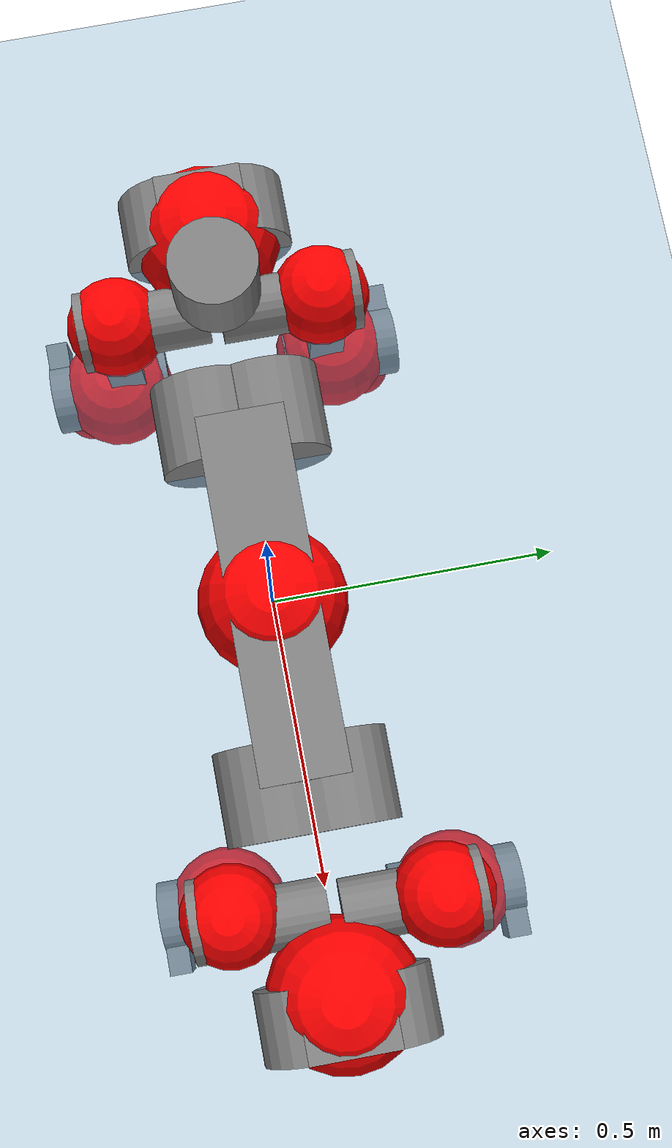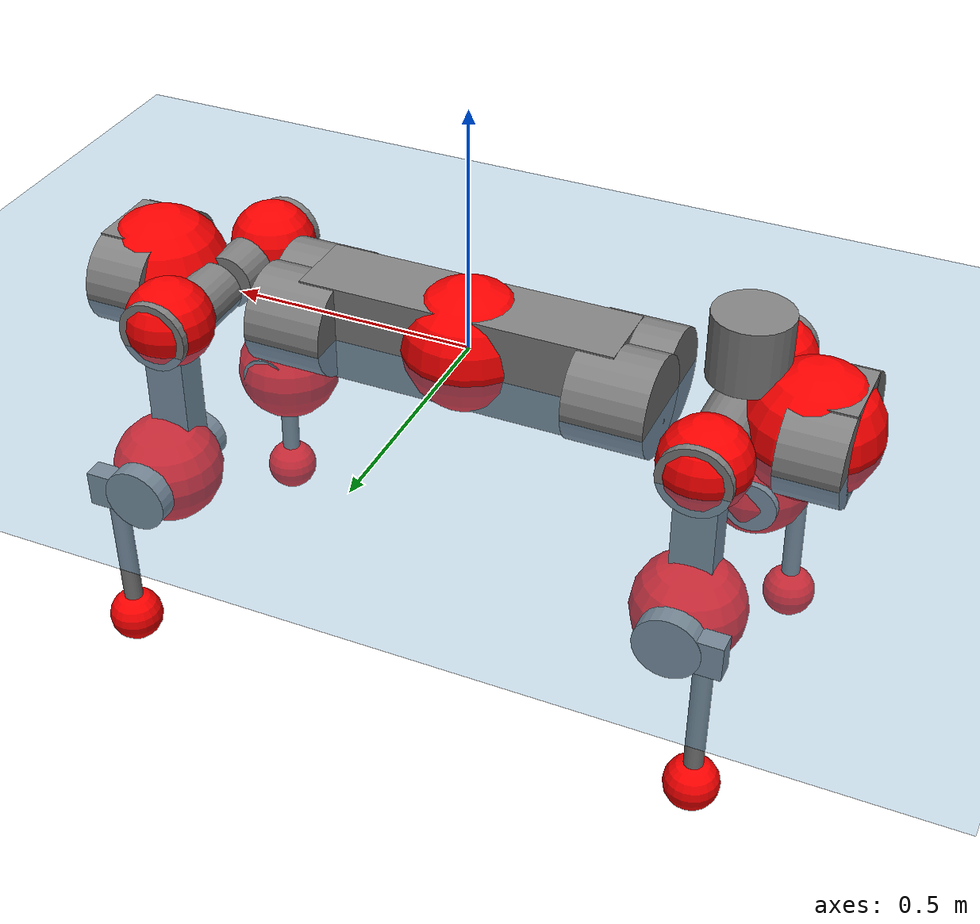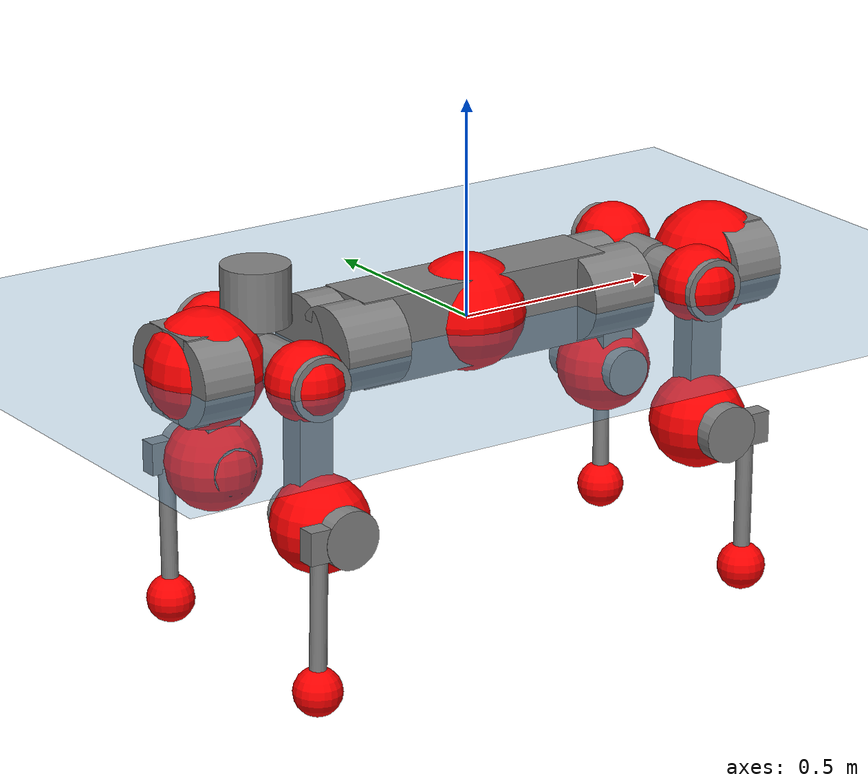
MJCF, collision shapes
<mujoco model="anymal_c">
  <compiler angle="radian" assetdir="assets" balanceinertia="true" inertiafromgeom="false"/>

  <option timestep="0.005" density="1.2" viscosity="2e-05"/>

  <size nkey="1"/>

  <visual>
    <quality shadowsize="8192"/>
    <map shadowclip="0.5"/>
  </visual>

  <default>
    <default class="/">
      <material specular="0" shininess="0.25"/>
      <geom contype="0" conaffinity="0" group="1" solref="-1000 -80"/>
      <site size="0.01 0.005 0.005" group="5"/>
      <general forcelimited="true" forcerange="-80 80" biastype="affine" gainprm="80" biasprm="0 -80 -2"/>
      <default class="anymal_c">
        <joint armature="0.01" damping="0.01" frictionloss="0.1"/>
        <default class="visual">
          <geom type="mesh" group="2"/>
          <default class="visual_zflip"/>
        </default>
        <default class="collision">
          <geom type="cylinder" group="3"/>
          <default class="foot">
            <geom size="0.03 0 0" type="sphere" condim="6" priority="1" friction="0.8 0.02 0.01" solimp="0.015 1 0.03"/>
          </default>
        </default>
      </default>
      <default class="reward_collision_sphere">
        <geom group="5" rgba="1 0 0 1"/>
      </default>
    </default>
  </default>

  <asset>
    <texture type="skybox" colorspace="auto" name="//unnamed_texture_0" builtin="gradient" rgb1="0.95 0.95 0.95" rgb2="0.95 0.95 0.95" width="100" height="600"/>
    <texture type="2d" colorspace="auto" name="texplane" builtin="checker" rgb1="0.345 0.575 0.748" rgb2="0.345 0.575 0.748" markrgb="1 1 1" width="512" height="512"/>
    <texture type="2d" colorspace="linear" name="base" file="base.png"/>
    <texture type="2d" colorspace="linear" name="top_shell" file="top_shell.png"/>
    <texture type="2d" colorspace="linear" name="bottom_shell" file="bottom_shell.png"/>
    <texture type="2d" colorspace="linear" name="remote" file="remote.png"/>
    <texture type="2d" colorspace="linear" name="hatch" file="hatch.png"/>
    <texture type="2d" colorspace="linear" name="handle" file="handle.png"/>
    <texture type="2d" colorspace="linear" name="face" file="face.png"/>
    <texture type="2d" colorspace="linear" name="battery" file="battery.png"/>
    <texture type="2d" colorspace="linear" name="lidar_cage" file="lidar_cage.png"/>
    <texture type="2d" colorspace="linear" name="depth_camera" file="depth_camera.png"/>
    <texture type="2d" colorspace="linear" name="wide_angle_camera" file="wide_angle_camera.png"/>
    <texture type="2d" colorspace="linear" name="lidar" file="lidar.png"/>
    <texture type="2d" colorspace="linear" name="drive" file="drive.png"/>
    <texture type="2d" colorspace="linear" name="hip_l" file="hip_l.png"/>
    <texture type="2d" colorspace="linear" name="shank_l" file="shank_l.png"/>
    <texture type="2d" colorspace="linear" name="foot" file="foot.png"/>
    <texture type="2d" colorspace="linear" name="thigh" file="thigh.png"/>
    <texture type="2d" colorspace="linear" name="shank_r" file="shank_r.png"/>
    <texture type="2d" colorspace="linear" name="hip_r" file="hip_r.png"/>
    <material name="MatPlane" class="/" texture="texplane" texuniform="true" texrepeat="2 2" specular="0.9" shininess="0.5"/>
    <material name="black_plastic" class="/" rgba="0.007 0.007 0.007 1"/>
    <material name="green" class="/" rgba="0.052 0.178 0.033 1"/>
    <material name="red" class="/" rgba="0.178 0.006 0.005 1"/>
    <material name="yellow" class="/" rgba="0.178 0.119 0.006 1"/>
    <material name="lwl" class="/" rgba="0.8 0.8 0.8 1"/>
    <material name="base" class="/" texture="base"/>
    <material name="top_shell" class="/" texture="top_shell"/>
    <material name="bottom_shell" class="/" texture="bottom_shell"/>
    <material name="hip_l" class="/" texture="hip_l"/>
    <material name="thigh" class="/" texture="thigh"/>
    <material name="shank_l" class="/" texture="shank_l"/>
    <material name="foot" class="/" texture="foot"/>
    <material name="hip_r" class="/" texture="hip_r"/>
    <material name="shank" class="/" texture="shank_r"/>
    <material name="hatch" class="/" texture="hatch"/>
    <material name="remote" class="/" texture="remote"/>
    <material name="handle" class="/" texture="handle"/>
    <material name="face" class="/" texture="face"/>
    <material name="depth_camera" class="/" texture="depth_camera"/>
    <material name="wide_angle_camera" class="/" texture="wide_angle_camera"/>
    <material name="battery" class="/" texture="battery"/>
    <material name="lidar_cage" class="/" texture="lidar_cage"/>
    <material name="lidar" class="/" texture="lidar"/>
    <material name="drive" class="/" texture="drive"/>
    <mesh name="base_0" class="/" file="base_0.obj"/>
    <mesh name="base_1" class="/" file="base_1.obj"/>
    <mesh name="base_2" class="/" file="base_2.obj"/>
    <mesh name="base_3" class="/" file="base_3.obj"/>
    <mesh name="base_4" class="/" file="base_4.obj"/>
    <mesh name="base_5" class="/" file="base_5.obj"/>
    <mesh name="top_shell" class="/" file="top_shell.obj"/>
    <mesh name="bottom_shell" class="/" file="bottom_shell.obj"/>
    <mesh name="remote" class="/" file="remote.obj"/>
    <mesh name="handle" class="/" file="handle.obj"/>
    <mesh name="face" class="/" file="face.obj"/>
    <mesh name="wide_angle_camera" class="/" file="wide_angle_camera.obj"/>
    <mesh name="depth_camera" class="/" file="depth_camera.obj"/>
    <mesh name="battery" class="/" file="battery.obj"/>
    <mesh name="lidar_cage" class="/" file="lidar_cage.obj"/>
    <mesh name="lidar" class="/" file="lidar.obj"/>
    <mesh name="drive" class="/" file="drive.obj"/>
    <mesh name="hip_l" class="/" file="hip_l.obj"/>
    <mesh name="thigh" class="/" file="thigh.obj"/>
    <mesh name="shank_l" class="/" file="shank_l.obj"/>
    <mesh name="foot" class="/" file="foot.obj"/>
    <mesh name="hip_r" class="/" file="hip_r.obj"/>
    <mesh name="hatch" class="/" file="hatch.obj"/>
    <mesh name="shank_r" class="/" file="shank_r.obj"/>
  </asset>

  <worldbody>
    <geom name="floor" class="/" size="100 100 0.125" type="plane" group="0" material="MatPlane"/>
    <light name="toplight_shadow" class="/" pos="0 0 5" dir="0.0990148 0.0990148 -0.990148" type="directional" ambient="0.04 0.04 0.04" diffuse="0.55 0.55 0.55" specular="0.12 0.12 0.12"/>
    <light name="toplight_fill" class="/" pos="0 0 5" dir="0.0990148 0.0990148 -0.990148" type="directional" castshadow="false" ambient="0.04 0.04 0.04" diffuse="0.3 0.3 0.3" specular="0.08 0.08 0.08"/>
    <body name="trunk" childclass="anymal_c" pos="-0.000245169 0.000598042 0.0119663" quat="0.999999 0.000589413 -2.55205e-05 -0.000823267">
      <inertial pos="0.00085652 -0.0158154 0.0415795" quat="0.499679 0.501152 0.499654 0.499513" mass="27.4742" diaginertia="4.62285 0.146784 0.376881"/>
      <joint name="//unnamed_joint_0" type="free" armature="0" damping="0" frictionloss="0"/>
      <geom name="//unnamed_geom_1" class="visual" material="green" mesh="base_0"/>
      <geom name="//unnamed_geom_2" class="visual" material="yellow" mesh="base_1"/>
      <geom name="//unnamed_geom_3" class="visual" material="red" mesh="base_2"/>
      <geom name="//unnamed_geom_4" class="visual" material="black_plastic" mesh="base_3"/>
      <geom name="//unnamed_geom_5" class="visual" material="lwl" mesh="base_4"/>
      <geom name="//unnamed_geom_6" class="visual" material="base" mesh="base_5"/>
      <geom name="trunk_1" class="collision" size="0.322646 0.0778802 0.100132" type="box"/>
      <geom name="trunk_2" class="collision" size="0.100132 0.0806616" pos="0.32897 0.051711 0" quat="0.707107 0 0.707107 0"/>
      <geom name="trunk_3" class="collision" size="0.100132 0.0806616" pos="-0.32897 0.051711 0" quat="0.707107 0 0.707107 0"/>
      <geom name="trunk_4" class="collision" size="0.100132 0.0806616" pos="0.32897 -0.051711 0" quat="0.707107 0 0.707107 0"/>
      <geom name="trunk_5" class="collision" size="0.100132 0.0806616" pos="-0.32897 -0.051711 0" quat="0.707107 0 0.707107 0"/>
      <geom name="//unnamed_geom_12" class="visual" material="top_shell" mesh="top_shell"/>
      <geom name="//unnamed_geom_13" class="visual" material="bottom_shell" mesh="bottom_shell"/>
      <geom name="//unnamed_geom_14" class="visual" material="remote" mesh="remote"/>
      <geom name="//unnamed_geom_15" class="visual" material="handle" mesh="handle"/>
      <geom name="//unnamed_geom_16" class="visual" pos="0.626934 0 0" quat="1 0 0 0" material="face" mesh="face"/>
      <geom name="trunk_6" class="collision" size="0.0611916 0.0778802 0.100132" pos="0.710122 0 0" type="box"/>
      <geom name="//unnamed_geom_18" class="collision" size="0.100132 0.0611916" pos="0.710122 0.051711 0" quat="0.707107 0 0.707107 0"/>
      <geom name="//unnamed_geom_19" class="collision" size="0.100132 0.0611916" pos="0.710122 -0.051711 0" quat="0.707107 0 0.707107 0"/>
      <geom name="//unnamed_geom_20" class="visual" pos="0.698231 0 -0.0284877" quat="0.965926 0 0.258819 0" material="depth_camera" mesh="depth_camera"/>
      <geom name="//unnamed_geom_21" class="visual" pos="0.775916 0 0.0162647" material="wide_angle_camera" mesh="wide_angle_camera"/>
      <geom name="//unnamed_geom_22" class="visual_zflip" pos="-0.626934 0 0" quat="0 0 0 1" material="face" mesh="face"/>
      <geom name="trunk_7" class="collision" size="0.0611916 0.0778802 0.100132" pos="-0.710122 0 0" quat="0 0 0 1" type="box"/>
      <geom name="//unnamed_geom_24" class="collision" size="0.100132 0.0611916" pos="-0.710122 -0.051711 0" quat="0 -0.707107 0 0.707107"/>
      <geom name="//unnamed_geom_25" class="collision" size="0.100132 0.0611916" pos="-0.710122 0.051711 0" quat="0 -0.707107 0 0.707107"/>
      <geom name="//unnamed_geom_26" class="visual" pos="-0.698231 0 -0.0284877" quat="0 -0.258819 0 0.965926" material="depth_camera" mesh="depth_camera"/>
      <geom name="//unnamed_geom_27" class="visual_zflip" pos="-0.775916 0 0.0162647" quat="0 0 0 1" material="wide_angle_camera" mesh="wide_angle_camera"/>
      <geom name="//unnamed_geom_28" class="visual" material="battery" mesh="battery"/>
      <geom name="//unnamed_geom_29" class="visual" pos="0 0.0463119 0.0348002" quat="0.683013 -0.183013 0.183013 0.683013" material="depth_camera" mesh="depth_camera"/>
      <geom name="//unnamed_geom_30" class="visual" pos="0 -0.0463119 0.0348002" quat="0.683013 0.183013 0.183013 -0.683013" material="depth_camera" mesh="depth_camera"/>
      <geom name="//unnamed_geom_31" class="visual" pos="-0.550553 0 0.0798568" quat="1 0 0 0" material="lidar_cage" mesh="lidar_cage"/>
      <geom name="trunk_8" class="collision" size="0.0778802 0.0667544" pos="-0.550553 0 0.145046"/>
      <geom name="//unnamed_geom_33" class="visual" pos="-0.550553 -0.000303997 0.154498" quat="0.707107 0 0 -0.707107" material="lidar" mesh="lidar"/>
      <geom name="//unnamed_geom_34" class="visual" pos="0.453601 0.0769513 -5.99887e-09" quat="0.258819 0.965926 0 0" material="drive" mesh="drive"/>
      <geom name="//unnamed_geom_35" class="visual" pos="0.453601 -0.0769513 5.99887e-09" quat="0.258819 -0.965926 0 0" material="drive" mesh="drive"/>
      <geom name="//unnamed_geom_36" class="visual" pos="-0.453601 0.0769513 5.99887e-09" quat="0 0 0.965926 -0.258819" material="drive" mesh="drive"/>
      <geom name="//unnamed_geom_37" class="visual" pos="-0.453601 -0.0769513 -5.99887e-09" quat="0 0 -0.965926 -0.258819" material="drive" mesh="drive"/>
      <geom name="//unnamed_geom_38" class="visual" pos="0.175451 0 0.0793135" quat="1 0 0 0" material="hatch" mesh="hatch"/>
      <geom name="//unnamed_geom_39" class="reward_collision_sphere" size="0.133509"/>
      <geom name="//unnamed_geom_40" class="reward_collision_sphere" size="0.133509" pos="0.680628 0 0"/>
      <geom name="//unnamed_geom_41" class="reward_collision_sphere" size="0.133509" pos="-0.680628 0 0"/>
      <site name="imu" pos="0.339349 0.0558626 0.011442" size="0.0111257"/>
      <camera name="track" pos="0 -1.47746 0" quat="0.707107 0.707107 0 0" mode="trackcom"/>
      <camera name="ego_camera" pos="0.680628 0 -0.0434595" quat="-0.5 -0.5 0.5 0.5"/>
      <body name="LF_HIP" pos="0.455972 0.0876919 -0.00325822" quat="0.261073 0.965317 -0.000691398 -0.00192472">
        <inertial pos="0.0998852 -0.00917691 0.000625114" quat="-0.141841 0.718888 -0.139945 0.665955" mass="4.47063" diaginertia="0.0506493 0.0013144 0.00470826"/>
        <joint name="LF_HAA" pos="0 0 0" axis="0.999995 0.00037214 -0.00324027" range="-0.549472 0.487106" armature="0.00469573" damping="0" frictionloss="0.187396"/>
        <geom name="//unnamed_geom_42" class="visual" pos="0 -0.000352886 5.79613e-05" quat="0.258819 -0.965926 0 0" material="hip_l" mesh="hip_l"/>
        <geom name="//unnamed_geom_43" class="visual" pos="0.0905992 -0.0997157 -0.0601432" quat="0.183013 -0.683013 0.683013 0.183013" material="drive" mesh="drive"/>
        <geom name="//unnamed_geom_44" class="collision" size="0.0556287 0.0778802" pos="0.0905992 -0.00883504 -0.00750219" quat="-0.353553 -0.612372 0.612372 -0.353553"/>
        <body name="LF_THIGH" pos="0.0908552 -0.0496501 -0.0540808" quat="0.183095 -0.682916 0.683122 0.182884">
          <inertial pos="0.0488549 0.000945525 -0.257143" quat="0.992826 -0.0143563 -0.0868815 0.0808817" mass="4.62448" diaginertia="0.228288 0.0065201 0.00903978"/>
          <joint name="LF_HFE" pos="0 0 0" axis="0.999033 0.023995 -0.0368432" stiffness="0.0325799" range="-2.91625 2.97015" armature="0.0071347" damping="0.0155416" frictionloss="0.0917144"/>
          <geom name="//unnamed_geom_45" class="visual" pos="0.0153952 2.42592e-05 0" quat="0.707107 0 0 -0.707107" material="thigh" mesh="thigh"/>
          <geom name="//unnamed_geom_46" class="collision" size="0.0723173 0.044503" pos="0.0605003 0 0" quat="0.5 0.5 -0.5 -0.5"/>
          <geom name="//unnamed_geom_47" class="collision" size="0.0417215 0.0333772 0.157222" pos="0.0453752 0 -0.153536" quat="0.707107 0 0 -0.707107" type="box"/>
          <geom name="//unnamed_geom_48" class="visual" pos="0.151704 0 -0.309649" quat="1 0 0 0" material="drive" mesh="drive"/>
          <geom name="//unnamed_geom_49" class="collision" size="0.0556287 0.0778802" pos="0.045829 0 -0.309649" quat="0.707107 0 0.707107 0"/>
          <geom name="//unnamed_geom_50" class="reward_collision_sphere" size="0.0890059" pos="0.0378127 0 0"/>
          <body name="LF_SHANK" pos="0.160258 -0.0117827 -0.322325" quat="0.999971 0.00357607 0.00637911 -0.00219379">
            <inertial pos="0.0112 -0.0454977 -0.0873198" quat="0.992863 -0.116385 -6.61524e-05 -0.0260224" mass="1.02548" diaginertia="0.0781964 0.00208498 0.00188591"/>
            <joint name="LF_KFE" pos="0 0 0" axis="0.999526 -0.0305697 0.00364072" range="-3.22025 3.23804" armature="0.0163487" damping="0" frictionloss="0.177995"/>
            <geom name="//unnamed_geom_51" class="visual" pos="0.00502002 0.026767 0" quat="0.707107 0 0 -0.707107" material="shank_l" mesh="shank_l"/>
            <geom name="LF_kfe_act" class="collision" size="0.0667544 0.0222515" pos="0.0302501 0 0" quat="0.5 0.5 -0.5 -0.5"/>
            <geom name="//unnamed_geom_53" class="collision" size="0.0639719 0.0375494 0.0211389" pos="0.0302501 -0.0424761 0" quat="0.5 0.5 -0.5 -0.5" type="box"/>
            <geom name="//unnamed_geom_54" class="visual" pos="0.019737 -0.0563452 -0.3672" quat="0.382683 0 0 -0.92388" material="foot" mesh="foot"/>
            <geom name="LF_calf" class="collision" size="0.01947 0.157153" pos="0.0197382 -0.0649711 -0.1836" quat="0.707107 0 0 -0.707107"/>
            <geom name="LF_foot" class="foot" size="0.0167331" pos="0.0197382 -0.0649711 -0.342754" quat="0.707107 0 0 -0.707107"/>
            <geom name="//unnamed_geom_57" class="reward_collision_sphere" size="0.111257" pos="-0.0756253 0 0"/>
            <geom name="//unnamed_geom_58" class="reward_collision_sphere" size="0.0556287" pos="0.0197382 -0.0649711 -0.342754"/>
            <site name="LF_foot" class="foot" pos="0.0197382 -0.0649711 -0.342754" quat="0.707107 0 0 -0.707107" size="0.0111257"/>
          </body>
        </body>
      </body>
      <body name="RF_HIP" pos="0.44638 -0.0664273 -0.00147923" quat="0.263455 -0.96466 0.00318921 0.00344387">
        <inertial pos="0.0866484 0.00697203 -0.00429809" quat="0.134523 0.680762 0.124606 0.709182" mass="4.14881" diaginertia="0.0569452 0.00143066 0.00480386"/>
        <joint name="RF_HAA" pos="0 0 0" axis="0.999979 -0.00595923 0.00270911" range="-0.74725 1.02337" armature="0.0121055" damping="0" frictionloss="0.172632"/>
        <geom name="//unnamed_geom_59" class="visual" pos="0 0.000352884 5.79612e-05" quat="0.258819 0.965926 0 0" material="hip_r" mesh="hip_r"/>
        <geom name="//unnamed_geom_60" class="visual" pos="0.0905991 0.0997157 -0.0601432" quat="0.183013 0.683013 0.683013 -0.183013" material="drive" mesh="drive"/>
        <geom name="//unnamed_geom_61" class="collision" size="0.0556287 0.0778802" pos="0.0905992 0.00883504 -0.00750219" quat="-0.353553 0.612372 0.612372 0.353553"/>
        <body name="RF_THIGH" pos="0.0739982 0.0435251 -0.0438136" quat="0.18029 0.68308 0.683164 -0.18489">
          <inertial pos="0.0448636 0.00422312 -0.266382" quat="0.992666 -0.00234834 -0.0822538 0.0885563" mass="3.72167" diaginertia="0.224743 0.0057359 0.0046713"/>
          <joint name="RF_HFE" pos="0 0 0" axis="0.996985 0.0768012 -0.0110867" stiffness="0.0155217" range="-3.48253 3.4443" armature="0.0101945" damping="0.0670188" frictionloss="0.143244"/>
          <geom name="//unnamed_geom_62" class="visual" pos="0.0153952 2.42592e-05 0" quat="0.707107 0 0 -0.707107" material="thigh" mesh="thigh"/>
          <geom name="//unnamed_geom_63" class="collision" size="0.0723173 0.044503" pos="0.0605003 0 0" quat="0.5 0.5 0.5 0.5"/>
          <geom name="//unnamed_geom_64" class="collision" size="0.0417215 0.0333772 0.157222" pos="0.0453752 0 -0.153536" quat="0.707107 0 0 0.707107" type="box"/>
          <geom name="//unnamed_geom_65" class="visual" pos="0.151704 0 -0.309649" quat="1 0 0 0" material="drive" mesh="drive"/>
          <geom name="//unnamed_geom_66" class="collision" size="0.0556287 0.0778802" pos="0.045829 0 -0.309649" quat="0.707107 0 0.707107 0"/>
          <geom name="//unnamed_geom_67" class="reward_collision_sphere" size="0.0890059" pos="0.0378127 0 0"/>
          <body name="RF_SHANK" pos="0.136137 -0.00536186 -0.319192" quat="0.999997 0.000592309 0.00166957 0.00182075">
            <inertial pos="0.0162029 0.0509777 -0.10406" quat="0.990898 0.133907 0.0136171 0.00192513" mass="0.980914" diaginertia="0.0694807 0.00206526 0.00172087"/>
            <joint name="RF_KFE" pos="0 0 0" axis="0.996273 -0.0330398 0.0796834" stiffness="0.0373609" range="-3.26915 3.4131" armature="0.0116797" damping="0" frictionloss="0.206676"/>
            <geom name="//unnamed_geom_68" class="visual" pos="0.00502 -0.026767 0" quat="0.707107 0 0 0.707107" material="shank" mesh="shank_r"/>
            <geom name="RF_kfe_act" class="collision" size="0.0667544 0.0222515" pos="0.0302501 0 0" quat="0.5 0.5 0.5 0.5"/>
            <geom name="//unnamed_geom_70" class="collision" size="0.0639719 0.0375494 0.0211389" pos="0.0302501 0.0424761 0" quat="0.5 0.5 0.5 0.5" type="box"/>
            <geom name="//unnamed_geom_71" class="visual" pos="0.0197394 0.0563452 -0.3672" quat="0.382683 0 0 0.92388" material="foot" mesh="foot"/>
            <geom name="RF_calf" class="collision" size="0.01947 0.157153" pos="0.0197382 0.0649711 -0.1836" quat="0.707107 0 0 0.707107"/>
            <geom name="RF_foot" class="foot" size="0.0265156" pos="0.0197382 0.0649711 -0.342754" quat="0.707107 0 0 0.707107"/>
            <geom name="//unnamed_geom_74" class="reward_collision_sphere" size="0.111257" pos="-0.0756253 0 0"/>
            <geom name="//unnamed_geom_75" class="reward_collision_sphere" size="0.0556287" pos="0.0197382 0.0649711 -0.342754"/>
            <site name="RF_foot" class="foot" pos="0.0197382 0.0649711 -0.342754" quat="0.707107 0 0 0.707107" size="0.0111257"/>
          </body>
        </body>
      </body>
      <body name="LH_HIP" pos="-0.448013 0.0646295 -0.00319629" quat="0.000311184 -0.000314754 0.965442 -0.260616">
        <inertial pos="0.0951447 0.0251678 -0.0137819" quat="0.183428 0.682321 0.0535816 0.705635" mass="4.69092" diaginertia="0.0423754 0.00093569 0.00555168"/>
        <joint name="LH_HAA" pos="0 0 0" axis="0.998185 -0.0323382 -0.0508055" stiffness="0.0626847" range="-0.604684 0.905094" armature="0.0111123" damping="0.0659123" frictionloss="0.0582092"/>
        <geom name="//unnamed_geom_76" class="visual" pos="0 0.000352884 5.79612e-05" quat="-0.258819 -0.965926 0 0" material="hip_r" mesh="hip_r"/>
        <geom name="//unnamed_geom_77" class="visual" pos="0.0905991 0.0997157 -0.0601432" quat="0.183013 0.683013 0.683013 -0.183013" material="drive" mesh="drive"/>
        <geom name="//unnamed_geom_78" class="collision" size="0.0556287 0.0778802" pos="0.0905992 0.00883504 -0.00750219" quat="-0.353553 0.612372 0.612372 0.353553"/>
        <body name="LH_THIGH" pos="0.0904021 0.067681 -0.0474021" quat="0.181867 0.686128 0.679791 -0.184492">
          <inertial pos="0.0539293 0.0118488 -0.266567" quat="0.99044 -0.0144499 -0.0619116 0.122423" mass="3.98389" diaginertia="0.205253 0.00597563 0.00452641"/>
          <joint name="LH_HFE" pos="0 0 0" axis="0.999998 -0.000994119 0.00184974" range="-3.15119 3.1286" armature="0.0118872" damping="0.0427593" frictionloss="0.113115"/>
          <geom name="//unnamed_geom_79" class="visual" pos="0.0153952 2.42592e-05 0" quat="0.707107 0 0 -0.707107" material="thigh" mesh="thigh"/>
          <geom name="//unnamed_geom_80" class="collision" size="0.0723173 0.044503" pos="0.0605003 0 0" quat="0.5 0.5 -0.5 -0.5"/>
          <geom name="//unnamed_geom_81" class="collision" size="0.0417215 0.0333772 0.157222" pos="0.0453752 0 -0.153536" quat="0.707107 0 0 -0.707107" type="box"/>
          <geom name="//unnamed_geom_82" class="visual" pos="0.151704 0 -0.309649" quat="1 0 0 0" material="drive" mesh="drive"/>
          <geom name="//unnamed_geom_83" class="collision" size="0.0556287 0.0778802" pos="0.045829 0 -0.309649" quat="0.707107 0 0.707107 0"/>
          <geom name="//unnamed_geom_84" class="reward_collision_sphere" size="0.0890059" pos="0.0378127 0 0"/>
          <body name="LH_SHANK" pos="0.139144 -0.00116799 -0.312811" quat="0.999977 -0.00606821 0.00212932 -0.00209248">
            <inertial pos="-0.00457772 0.0525119 -0.0760856" quat="0.993116 0.114539 -0.000776636 0.0245239" mass="0.744639" diaginertia="0.0679983 0.00128406 0.00102627"/>
            <joint name="LH_KFE" pos="0 0 0" axis="0.998549 -0.0505003 -0.018713" range="-3.14632 3.49619" armature="0.012008" damping="0" frictionloss="0.0602263"/>
            <geom name="//unnamed_geom_85" class="visual" pos="0.00502 -0.026767 0" quat="-0.707107 0 0 -0.707107" material="shank" mesh="shank_r"/>
            <geom name="LH_kfe_act" class="collision" size="0.0667544 0.0222515" pos="0.0302501 0 0" quat="0.5 0.5 -0.5 -0.5"/>
            <geom name="//unnamed_geom_87" class="collision" size="0.0639719 0.0375494 0.0211389" pos="0.0302501 0.0424761 0" quat="0.5 0.5 -0.5 -0.5" type="box"/>
            <geom name="//unnamed_geom_88" class="visual" pos="0.0197394 0.0563452 -0.3672" quat="-0.382683 0 0 -0.92388" material="foot" mesh="foot"/>
            <geom name="LH_calf" class="collision" size="0.01947 0.157153" pos="0.0197382 0.0649711 -0.1836" quat="0.707107 0 0 -0.707107"/>
            <geom name="LH_foot" class="foot" size="0.0530221" pos="0.0197382 0.0649711 -0.342754" quat="0.707107 0 0 -0.707107"/>
            <geom name="//unnamed_geom_91" class="reward_collision_sphere" size="0.111257" pos="-0.0756253 0 0"/>
            <geom name="//unnamed_geom_92" class="reward_collision_sphere" size="0.0556287" pos="0.0197382 0.0649711 -0.342754"/>
            <site name="LH_foot" class="foot" pos="0.0197382 0.0649711 -0.342754" quat="0.707107 0 0 -0.707107" size="0.0111257"/>
          </body>
        </body>
      </body>
      <body name="RH_HIP" pos="-0.452862 -0.0898307 -0.0011134" quat="0.00585655 0.00345589 -0.966451 -0.256761">
        <inertial pos="0.0801546 -0.0205595 -0.000345455" quat="-0.192045 0.71695 -0.0811022 0.665225" mass="4.71318" diaginertia="0.0457168 0.0013772 0.00566113"/>
        <joint name="RH_HAA" pos="0 0 0" axis="0.999327 0.0154586 0.033264" stiffness="0.0327736" range="-0.439982 0.372757" armature="0.0198128" damping="0.012739" frictionloss="0.0508189"/>
        <geom name="//unnamed_geom_93" class="visual" pos="0 -0.000352886 5.79613e-05" quat="-0.258819 0.965926 0 0" material="hip_l" mesh="hip_l"/>
        <geom name="//unnamed_geom_94" class="visual" pos="0.0905992 -0.0997157 -0.0601432" quat="-0.183013 0.683013 -0.683013 -0.183013" material="drive" mesh="drive"/>
        <geom name="//unnamed_geom_95" class="collision" size="0.0556287 0.0778802" pos="0.0905992 -0.00883504 -0.00750219" quat="0.353553 0.612372 -0.612372 0.353553"/>
        <body name="RH_THIGH" pos="0.09477 -0.0552289 -0.0296773" quat="-0.18278 0.683457 -0.682185 -0.184668">
          <inertial pos="0.0464363 -0.0173666 -0.277123" quat="0.991931 -0.0692725 -0.0727412 0.0773503" mass="5.16077" diaginertia="0.301096 0.0081739 0.00804023"/>
          <joint name="RH_HFE" pos="0 0 0" axis="0.998464 -0.0435567 -0.0342518" range="-3.30664 3.44702" armature="0.000729318" damping="0" frictionloss="0.0727132"/>
          <geom name="//unnamed_geom_96" class="visual" pos="0.0153952 2.42592e-05 0" quat="0.707107 0 0 -0.707107" material="thigh" mesh="thigh"/>
          <geom name="//unnamed_geom_97" class="collision" size="0.0723173 0.044503" pos="0.0605003 0 0" quat="0.5 0.5 0.5 0.5"/>
          <geom name="//unnamed_geom_98" class="collision" size="0.0417215 0.0333772 0.157222" pos="0.0453752 0 -0.153536" quat="0.707107 0 0 0.707107" type="box"/>
          <geom name="//unnamed_geom_99" class="visual" pos="0.151704 0 -0.309649" quat="1 0 0 0" material="drive" mesh="drive"/>
          <geom name="//unnamed_geom_100" class="collision" size="0.0556287 0.0778802" pos="0.045829 0 -0.309649" quat="0.707107 0 0.707107 0"/>
          <geom name="//unnamed_geom_101" class="reward_collision_sphere" size="0.0890059" pos="0.0378127 0 0"/>
          <body name="RH_SHANK" pos="0.148244 0.0129208 -0.31432" quat="0.999981 -0.00496717 0.00360446 9.62877e-05">
            <inertial pos="-0.00104847 -0.0439567 -0.0872224" quat="0.998066 -0.047002 -0.0394284 -0.0100187" mass="1.07444" diaginertia="0.0841732 0.0024648 0.00148124"/>
            <joint name="RH_KFE" pos="0 0 0" axis="0.997198 0.035676 0.0657552" range="-3.40246 2.84781" armature="0.0123691" damping="0.0131858" frictionloss="0.0866048"/>
            <geom name="//unnamed_geom_102" class="visual" pos="0.00502002 0.026767 0" quat="0.707107 0 0 -0.707107" material="shank_l" mesh="shank_l"/>
            <geom name="RH_kfe_act" class="collision" size="0.0667544 0.0222515" pos="0.0302501 0 0" quat="0.5 0.5 0.5 0.5"/>
            <geom name="//unnamed_geom_104" class="collision" size="0.0639719 0.0375494 0.0211389" pos="0.0302501 -0.0424761 0" quat="0.5 0.5 0.5 0.5" type="box"/>
            <geom name="//unnamed_geom_105" class="visual" pos="0.019737 -0.0563452 -0.3672" quat="0.382683 0 0 -0.92388" material="foot" mesh="foot"/>
            <geom name="RH_calf" class="collision" size="0.01947 0.157153" pos="0.0197382 -0.0649711 -0.1836" quat="0.707107 0 0 0.707107"/>
            <geom name="RH_foot" class="foot" size="0.0548646" pos="0.0197382 -0.0649711 -0.342754" quat="0.707107 0 0 0.707107"/>
            <geom name="//unnamed_geom_108" class="reward_collision_sphere" size="0.111257" pos="-0.0756253 0 0"/>
            <geom name="//unnamed_geom_109" class="reward_collision_sphere" size="0.0556287" pos="0.0197382 -0.0649711 -0.342754"/>
            <site name="RH_foot" class="foot" pos="0.0197382 -0.0649711 -0.342754" quat="0.707107 0 0 0.707107" size="0.0111257"/>
          </body>
        </body>
      </body>
    </body>
  </worldbody>

  <contact>
    <pair class="/" geom1="floor" geom2="LF_foot" name="//unnamed_contact_0"/>
    <pair class="/" geom1="floor" geom2="RF_foot" name="//unnamed_contact_1"/>
    <pair class="/" geom1="floor" geom2="LH_foot" name="//unnamed_contact_2"/>
    <pair class="/" geom1="floor" geom2="RH_foot" name="//unnamed_contact_3"/>
  </contact>

  <actuator>
    <general name="LF_HAA" class="/" joint="LF_HAA" forcerange="-122.629 122.629" gainprm="54.5351" biasprm="0 -54.5351 -1.75508"/>
    <general name="LF_HFE" class="/" joint="LF_HFE" forcerange="-145.886 145.886" gainprm="54.5351" biasprm="0 -54.5351 -1.75508"/>
    <general name="LF_KFE" class="/" joint="LF_KFE" forcerange="-68.6075 68.6075" gainprm="54.5351" biasprm="0 -54.5351 -1.75508"/>
    <general name="RF_HAA" class="/" joint="RF_HAA" forcerange="-111.66 111.66" gainprm="54.5351" biasprm="0 -54.5351 -1.75508"/>
    <general name="RF_HFE" class="/" joint="RF_HFE" forcerange="-64.0794 64.0794" gainprm="54.5351" biasprm="0 -54.5351 -1.75508"/>
    <general name="RF_KFE" class="/" joint="RF_KFE" forcerange="-118.702 118.702" gainprm="54.5351" biasprm="0 -54.5351 -1.75508"/>
    <general name="LH_HAA" class="/" joint="LH_HAA" forcerange="-51.3033 51.3033" gainprm="54.5351" biasprm="0 -54.5351 -1.75508"/>
    <general name="LH_HFE" class="/" joint="LH_HFE" forcerange="-92.3637 92.3637" gainprm="54.5351" biasprm="0 -54.5351 -1.75508"/>
    <general name="LH_KFE" class="/" joint="LH_KFE" forcerange="-121.266 121.266" gainprm="54.5351" biasprm="0 -54.5351 -1.75508"/>
    <general name="RH_HAA" class="/" joint="RH_HAA" forcerange="-145.046 145.046" gainprm="54.5351" biasprm="0 -54.5351 -1.75508"/>
    <general name="RH_HFE" class="/" joint="RH_HFE" forcerange="-105.549 105.549" gainprm="54.5351" biasprm="0 -54.5351 -1.75508"/>
    <general name="RH_KFE" class="/" joint="RH_KFE" forcerange="-107.471 107.471" gainprm="54.5351" biasprm="0 -54.5351 -1.75508"/>
  </actuator>

  <sensor>
    <gyro site="imu" name="imu_angular_velocity"/>
    <velocimeter site="imu" name="imu_linear_velocity"/>
    <framelinvel objtype="site" objname="LF_foot" name="LF_foot_global_linear_velocity"/>
    <framelinvel objtype="site" objname="RF_foot" name="RF_foot_global_linear_velocity"/>
    <framelinvel objtype="site" objname="LH_foot" name="LH_foot_global_linear_velocity"/>
    <framelinvel objtype="site" objname="RH_foot" name="RH_foot_global_linear_velocity"/>
  </sensor>

  <keyframe>
    <key name="home" qpos="0 0 0.55 1 0 0 0 0 0.4 -0.8 0 -0.4 0.8 0 -0.4 0.8 0 0.4 -0.8"/>
  </keyframe>
</mujoco>
